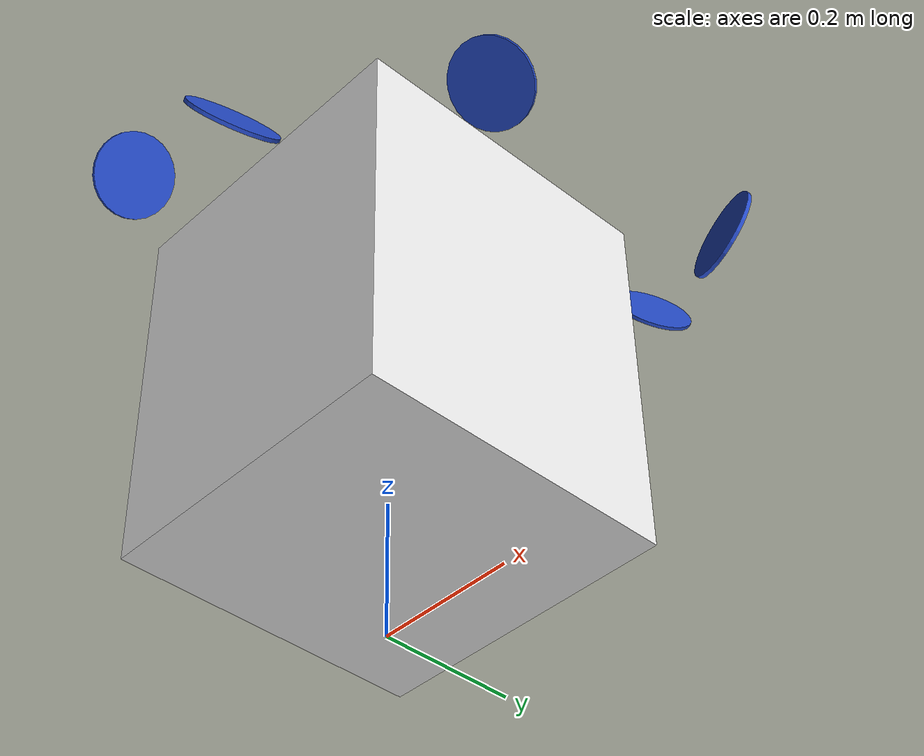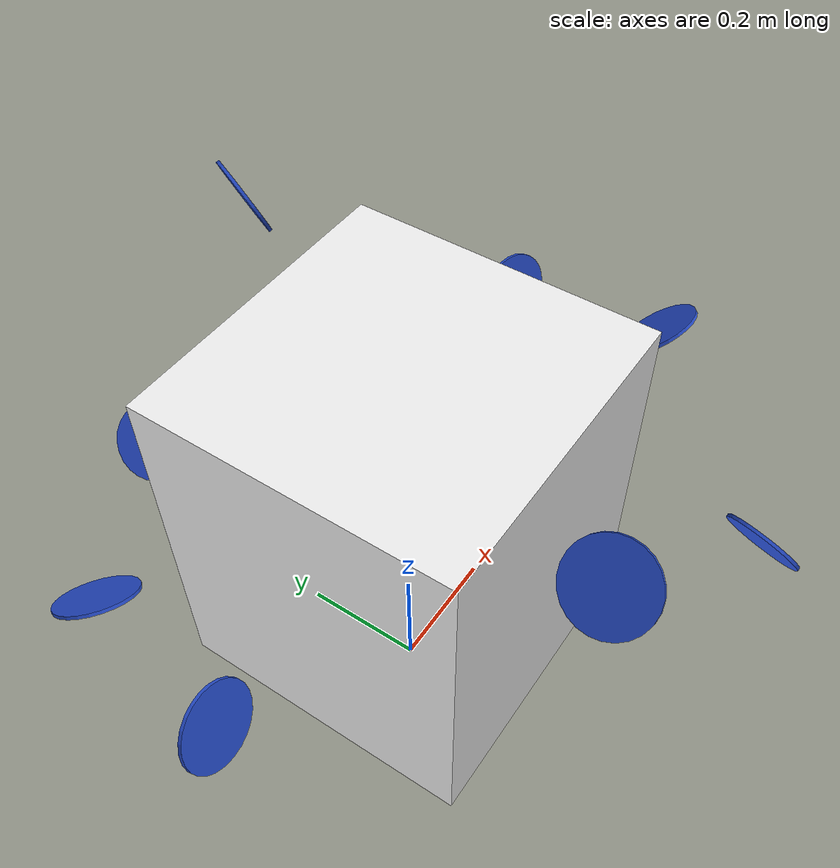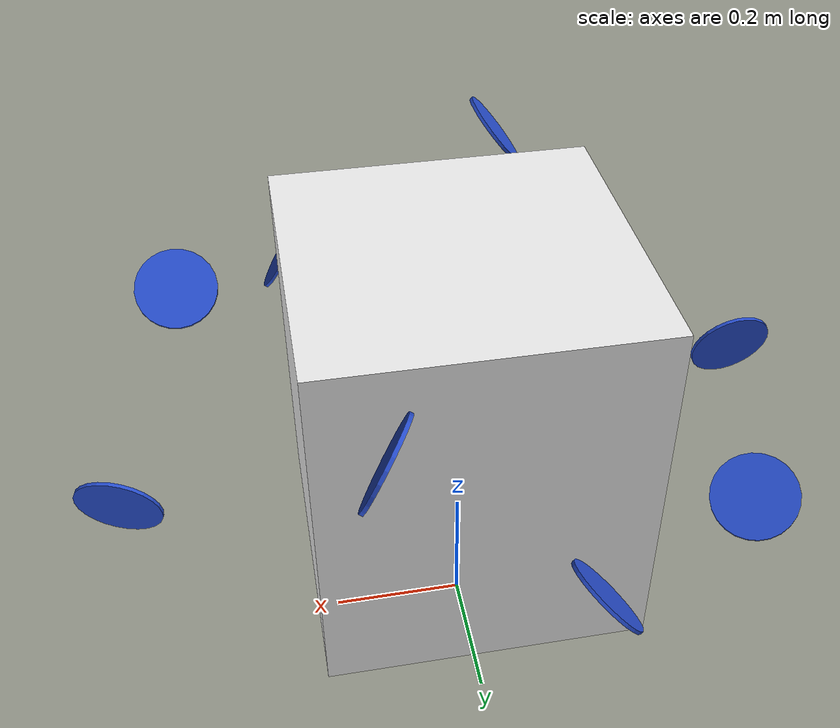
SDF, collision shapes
<?xml version='1.0'?>
<sdf version="1.6">
  <model name="omnicopter">

    <pose>0 0 0.4 0 0 0</pose>
     <link name='base_link'>
      <velocity_decay>
        <linear>0.0</linear>
        <angular>0.0</angular>
      </velocity_decay>
      <inertial>
        <pose>0.009 0.005 0.006 0 0 0</pose>
        <mass>3.3</mass>
        <inertia>
          <ixx>0.13</ixx>
          <ixy>0.01</ixy>
          <ixz>0.01</ixz>
          <iyy>0.12</iyy>
          <iyz>0</iyz>
          <izz>0.2</izz>
        </inertia>
      </inertial>
      <collision name='base_link_collision'>
        <pose>0 0 0 0 0 0</pose>
        <geometry>
          <box>
            <size>0.47 0.47 0.55</size>
          </box>
        </geometry>
        <surface>
          <contact>
            <ode>
              <max_vel>10.0</max_vel>
              <min_depth>0.001</min_depth>
            </ode>
          </contact>
          <friction>
            <ode>
              <mu>1.0</mu>
              <mu2>1.0</mu2>
            </ode>
          </friction>
        </surface>
      </collision>
      <visual name='base_link_visual'>
        <geometry>
          <mesh>
            <uri>meshes/omni.stl</uri>
          </mesh>
        </geometry>
        <material>
          <script>
            <uri>file:///usr/share/gz/gz-sim8/media</uri>
            <name>Gazebo/White</name>
          </script>
        </material>
      </visual>
	</link>
    <link name='imu_link'>
      <inertial>
        <pose>0 0 0 0 0 0</pose>
        <mass>0.02</mass>
        <inertia>
          <ixx>0.00001</ixx>
          <ixy>0</ixy>
          <ixz>0</ixz>
          <iyy>0.00002</iyy>
          <iyz>0</iyz>
          <izz>0.00002</izz>
        </inertia>
      </inertial>
      <sensor name="imu_sensor" type="imu">
        <pose>0 0 0 3.141593 0 0</pose>
        <always_on>1</always_on>
        <update_rate>1000.0</update_rate>
      </sensor>
    </link>
    <joint name='imu_joint' type='revolute'>
      <child>imu_link</child>
      <parent>base_link</parent>
      <axis>
        <xyz>0 0 1</xyz>
        <limit>
          <lower>0</lower>
          <upper>0</upper>
          <effort>0</effort>
          <velocity>0</velocity>
        </limit>
        <dynamics>
          <damping>1.0</damping>
        </dynamics>
        <use_parent_model_frame>1</use_parent_model_frame>
      </axis>
      <physics>
        <ode>
          <implicit_spring_damper>1</implicit_spring_damper>
        </ode>
      </physics>
    </joint>

<!-- FIND ROTORS -->
    <link name='rotor_0'>
      <pose>0.48374761 0.11400547 0.0  -1.85655318 -0.29207681 -0.21929448</pose>
      <inertial>
        <pose>0 0 0 0 -0 0</pose>
        <mass>0.015</mass>
        <inertia>
          <ixx>4.193333e-05</ixx>
          <ixy>0</ixy>
          <ixz>0</ixz>
          <iyy>4.193333e-05</iyy>
          <iyz>0</iyz>
          <izz>8.33e-05</izz>
        </inertia>
      </inertial>
      <collision name='rotor_0_collision'>
        <pose>0 0 0 0 -0 0</pose>
        <geometry>
          <cylinder>
            <length>0.005</length>
            <radius>0.06</radius>
          </cylinder>
        </geometry>
        <surface>
          <contact>
            <ode/>
          </contact>
          <friction>
            <ode/>
          </friction>
        </surface>
      </collision>
      <visual name='rotor_0_visual'>
        <pose>0 0 0 0 -0 0</pose>
        <geometry>
          <mesh>
            <scale>1 1 1</scale>
            <uri>meshes/CW.stl</uri>
          </mesh>
        </geometry>
        <material>
          <script>
            <uri>file:///usr/share/gz/gz-sim8/media</uri>
            <name>Gazebo/Blue</name>
          </script>
        </material>
      </visual>
      <gravity>1</gravity>
      <velocity_decay/>
      <self_collide>0</self_collide>
    </link>
    <joint name='rotor_0_joint' type='revolute'>
      <child>rotor_0</child>
      <parent>base_link</parent>
      <axis>
		<use_parent_model_frame>0</use_parent_model_frame>
        <xyz>0 0 1</xyz>
        <limit>
          <lower>-1e+16</lower>
          <upper>1e+16</upper>
        </limit>
        <dynamics>
          <damping>0.004</damping>
        </dynamics>
        <use_parent_model_frame>1</use_parent_model_frame>
      </axis>
      <physics>
        <ode>
          <implicit_spring_damper>1</implicit_spring_damper>
        </ode>
      </physics>
    </joint>
    <link name='rotor_1'>
      <pose>0.15621022 0.38314461 0.27533175 -0.78284715 -0.98303769 -2.70668811</pose>
      <inertial>
        <pose>0 0 0 0 -0 0</pose>
        <mass>0.015</mass>
        <inertia>
          <ixx>4.193333e-05</ixx>
          <ixy>0</ixy>
          <ixz>0</ixz>
          <iyy>4.193333e-05</iyy>
          <iyz>0</iyz>
          <izz>8.33e-05</izz>
        </inertia>
      </inertial>
      <collision name='rotor_1_collision'>
        <pose>0 0 0 0 -0 0</pose>
        <geometry>
          <cylinder>
            <length>0.005</length>
            <radius>0.06</radius>
          </cylinder>
        </geometry>
        <surface>
          <contact>
            <ode/>
          </contact>
          <friction>
            <ode/>
          </friction>
        </surface>
      </collision>
      <visual name='rotor_1_visual'>
        <pose>0 0 0 0 -0 0</pose>
        <geometry>
          <mesh>
            <scale>1 1 1</scale>
            <uri>meshes/CCW.stl</uri>
          </mesh>
        </geometry>
        <material>
          <script>
            <uri>file:///usr/share/gz/gz-sim8/media</uri>
            <name>Gazebo/Blue</name>
          </script>
        </material>
      </visual>
      <gravity>1</gravity>
      <velocity_decay/>
      <self_collide>0</self_collide>
    </link>
    <joint name='rotor_1_joint' type='revolute'>
      <child>rotor_1</child>
      <parent>base_link</parent>
      <axis>
		<use_parent_model_frame>0</use_parent_model_frame>
        <xyz>0 0 1</xyz>
        <limit>
          <lower>-1e+16</lower>
          <upper>1e+16</upper>
        </limit>
        <dynamics>
          <damping>0.004</damping>
        </dynamics>
        <use_parent_model_frame>1</use_parent_model_frame>
      </axis>
      <physics>
        <ode>
          <implicit_spring_damper>1</implicit_spring_damper>
        </ode>
      </physics>
    </joint>
    <link name='rotor_2'>
      <pose>-0.11032024 0.38136393 0.0 -0.33078502  0.84270089  2.99224844</pose>
      <inertial>
        <pose>0 0 0 0 -0 0</pose>
        <mass>0.015</mass>
        <inertia>
          <ixx>4.193333e-05</ixx>
          <ixy>0</ixy>
          <ixz>0</ixz>
          <iyy>4.193333e-05</iyy>
          <iyz>0</iyz>
          <izz>8.33e-05</izz>
        </inertia>
      </inertial>
      <collision name='rotor_2_collision'>
        <pose>0 0 0 0 -0 0</pose>
        <geometry>
          <cylinder>
            <length>0.005</length>
            <radius>0.06</radius>
          </cylinder>
        </geometry>
        <surface>
          <contact>
            <ode/>
          </contact>
          <friction>
            <ode/>
          </friction>
        </surface>
      </collision>
      <visual name='rotor_2_visual'>
        <pose>0 0 0 0 -0 0</pose>
        <geometry>
          <mesh>
            <scale>1 1 1</scale>
            <uri>meshes/CW.stl</uri>
          </mesh>
        </geometry>
        <material>
          <script>
            <uri>file:///usr/share/gz/gz-sim8/media</uri>
            <name>Gazebo/Blue</name>
          </script>
        </material>
      </visual>
      <gravity>1</gravity>
      <velocity_decay/>
      <self_collide>0</self_collide>
    </link>
    <joint name='rotor_2_joint' type='revolute'>
      <child>rotor_2</child>
      <parent>base_link</parent>
      <axis>
		<use_parent_model_frame>0</use_parent_model_frame>
        <xyz>0 0 1</xyz>
        <limit>
          <lower>-1e+16</lower>
          <upper>1e+16</upper>
        </limit>
        <dynamics>
          <damping>0.004</damping>
        </dynamics>
        <use_parent_model_frame>1</use_parent_model_frame>
      </axis>
      <physics>
        <ode>
          <implicit_spring_damper>1</implicit_spring_damper>
        </ode>
      </physics>
    </joint>
    <link name='rotor_3'>
      <pose>-0.35473328 0.25349615 0.0 2.6424989   0.32982685 -0.08477905</pose>
      <inertial>
        <pose>0 0 0 0 -0 0</pose>
        <mass>0.015</mass>
        <inertia>
          <ixx>4.193333e-05</ixx>
          <ixy>0</ixy>
          <ixz>0</ixz>
          <iyy>4.193333e-05</iyy>
          <iyz>0</iyz>
          <izz>8.33e-05</izz>
        </inertia>
      </inertial>
      <collision name='rotor_3_collision'>
        <pose>0 0 0 0 -0 0</pose>
        <geometry>
          <cylinder>
            <length>0.005</length>
            <radius>0.06</radius>
          </cylinder>
        </geometry>
        <surface>
          <contact>
            <ode/>
          </contact>
          <friction>
            <ode/>
          </friction>
        </surface>
      </collision>
      <visual name='rotor_3_visual'>
        <pose>0 0 0 0 -0 0</pose>
        <geometry>
          <mesh>
            <scale>1 1 1</scale>
            <uri>meshes/CCW.stl</uri>
          </mesh>
        </geometry>
        <material>
          <script>
            <uri>file:///usr/share/gz/gz-sim8/media</uri>
            <name>Gazebo/Blue</name>
          </script>
        </material>
      </visual>
      <gravity>1</gravity>
      <velocity_decay/>
      <self_collide>0</self_collide>
    </link>
    <joint name='rotor_3_joint' type='revolute'>
      <child>rotor_3</child>
      <parent>base_link</parent>
      <axis>
		<use_parent_model_frame>0</use_parent_model_frame>
        <xyz>0 0 1</xyz>
        <limit>
          <lower>-1e+16</lower>
          <upper>1e+16</upper>
        </limit>
        <dynamics>
          <damping>0.004</damping>
        </dynamics>
        <use_parent_model_frame>1</use_parent_model_frame>
      </axis>
      <physics>
        <ode>
          <implicit_spring_damper>1</implicit_spring_damper>
        </ode>
      </physics>
    </joint>
    <link name='rotor_4'>
      <pose>-0.41864087 -0.02021862 0.03964886 -1.84179685  0.07206257  0.05478069</pose>
      <inertial>
        <pose>0 0 0 0 -0 0</pose>
        <mass>0.015</mass>
        <inertia>
          <ixx>4.193333e-05</ixx>
          <ixy>0</ixy>
          <ixz>0</ixz>
          <iyy>4.193333e-05</iyy>
          <iyz>0</iyz>
          <izz>8.33e-05</izz>
        </inertia>
      </inertial>
      <collision name='rotor_4_collision'>
        <pose>0 0 0 0 -0 0</pose>
        <geometry>
          <cylinder>
            <length>0.005</length>
            <radius>0.06</radius>
          </cylinder>
        </geometry>
        <surface>
          <contact>
            <ode/>
          </contact>
          <friction>
            <ode/>
          </friction>
        </surface>
      </collision>
      <visual name='rotor_4_visual'>
        <pose>0 0 0 0 -0 0</pose>
        <geometry>
          <mesh>
            <scale>1 1 1</scale>
            <uri>meshes/CW.stl</uri>
          </mesh>
        </geometry>
        <material>
          <script>
            <uri>file:///usr/share/gz/gz-sim8/media</uri>
            <name>Gazebo/Blue</name>
          </script>
        </material>
      </visual>
      <gravity>1</gravity>
      <velocity_decay/>
      <self_collide>0</self_collide>
    </link>
    <joint name='rotor_4_joint' type='revolute'>
      <child>rotor_4</child>
      <parent>base_link</parent>
      <axis>
		<use_parent_model_frame>0</use_parent_model_frame>
        <xyz>0 0 1</xyz>
        <limit>
          <lower>-1e+16</lower>
          <upper>1e+16</upper>
        </limit>
        <dynamics>
          <damping>0.004</damping>
        </dynamics>
        <use_parent_model_frame>1</use_parent_model_frame>
      </axis>
      <physics>
        <ode>
          <implicit_spring_damper>1</implicit_spring_damper>
        </ode>
      </physics>
    </joint>
    <link name='rotor_5'>
      <pose>-0.12587546 -0.35639015 0.25151029 0.0098681   0.91727205 -3.13672024</pose>
      <inertial>
        <pose>0 0 0 0 -0 0</pose>
        <mass>0.015</mass>
        <inertia>
          <ixx>4.193333e-05</ixx>
          <ixy>0</ixy>
          <ixz>0</ixz>
          <iyy>4.193333e-05</iyy>
          <iyz>0</iyz>
          <izz>8.33e-05</izz>
        </inertia>
      </inertial>
      <collision name='rotor_5_collision'>
        <pose>0 0 0 0 -0 0</pose>
        <geometry>
          <cylinder>
            <length>0.005</length>
            <radius>0.06</radius>
          </cylinder>
        </geometry>
        <surface>
          <contact>
            <ode/>
          </contact>
          <friction>
            <ode/>
          </friction>
        </surface>
      </collision>
      <visual name='rotor_5_visual'>
        <pose>0 0 0 0 -0 0</pose>
        <geometry>
          <mesh>
            <scale>1 1 1</scale>
            <uri>meshes/CCW.stl</uri>
          </mesh>
        </geometry>
        <material>
          <script>
            <uri>file:///usr/share/gz/gz-sim8/media</uri>
            <name>Gazebo/Blue</name>
          </script>
        </material>
      </visual>
      <gravity>1</gravity>
      <velocity_decay/>
      <self_collide>0</self_collide>
    </link>
    <joint name='rotor_5_joint' type='revolute'>
      <child>rotor_5</child>
      <parent>base_link</parent>
      <axis>
		<use_parent_model_frame>0</use_parent_model_frame>
        <xyz>0 0 1</xyz>
        <limit>
          <lower>-1e+16</lower>
          <upper>1e+16</upper>
        </limit>
        <dynamics>
          <damping>0.004</damping>
        </dynamics>
        <use_parent_model_frame>1</use_parent_model_frame>
      </axis>
      <physics>
        <ode>
          <implicit_spring_damper>1</implicit_spring_damper>
        </ode>
      </physics>
    </joint>
    <link name='rotor_6'>
      <pose>0.22276892 -0.44427808 0.0 -0.37451244 -0.97919922 -2.94034096</pose>
      <inertial>
        <pose>0 0 0 0 -0 0</pose>
        <mass>0.015</mass>
        <inertia>
          <ixx>4.193333e-05</ixx>
          <ixy>0</ixy>
          <ixz>0</ixz>
          <iyy>4.193333e-05</iyy>
          <iyz>0</iyz>
          <izz>8.33e-05</izz>
        </inertia>
      </inertial>
      <collision name='rotor_6_collision'>
        <pose>0 0 0 0 -0 0</pose>
        <geometry>
          <cylinder>
            <length>0.005</length>
            <radius>0.06</radius>
          </cylinder>
        </geometry>
        <surface>
          <contact>
            <ode/>
          </contact>
          <friction>
            <ode/>
          </friction>
        </surface>
      </collision>
      <visual name='rotor_6_visual'>
        <pose>0 0 0 0 -0 0</pose>
        <geometry>
          <mesh>
            <scale>1 1 1</scale>
            <uri>meshes/CW.stl</uri>
          </mesh>
        </geometry>
        <material>
          <script>
            <uri>file:///usr/share/gz/gz-sim8/media</uri>
            <name>Gazebo/Blue</name>
          </script>
        </material>
      </visual>
      <gravity>1</gravity>
      <velocity_decay/>
      <self_collide>0</self_collide>
    </link>
    <joint name='rotor_6_joint' type='revolute'>
      <child>rotor_6</child>
      <parent>base_link</parent>
      <axis>
		<use_parent_model_frame>0</use_parent_model_frame>
        <xyz>0 0 1</xyz>
        <limit>
          <lower>-1e+16</lower>
          <upper>1e+16</upper>
        </limit>
        <dynamics>
          <damping>0.004</damping>
        </dynamics>
        <use_parent_model_frame>1</use_parent_model_frame>
      </axis>
      <physics>
        <ode>
          <implicit_spring_damper>1</implicit_spring_damper>
        </ode>
      </physics>
    </joint>
    <link name='rotor_7'>
      <pose>0.38490258 -0.17992486 0.13562099 2.4710711   0.01400798 -0.00488064</pose>
      <inertial>
        <pose>0 0 0 0 -0 0</pose>
        <mass>0.015</mass>
        <inertia>
          <ixx>4.193333e-05</ixx>
          <ixy>0</ixy>
          <ixz>0</ixz>
          <iyy>4.193333e-05</iyy>
          <iyz>0</iyz>
          <izz>8.33e-05</izz>
        </inertia>
      </inertial>
      <collision name='rotor_7_collision'>
        <pose>0 0 0 0 -0 0</pose>
        <geometry>
          <cylinder>
            <length>0.005</length>
            <radius>0.06</radius>
          </cylinder>
        </geometry>
        <surface>
          <contact>
            <ode/>
          </contact>
          <friction>
            <ode/>
          </friction>
        </surface>
      </collision>
      <visual name='rotor_7_visual'>
        <pose>0 0 0 0 -0 0</pose>
        <geometry>
          <mesh>
            <scale>1 1 1</scale>
            <uri>meshes/CCW.stl</uri>
          </mesh>
        </geometry>
        <material>
          <script>
            <uri>file:///usr/share/gz/gz-sim8/media</uri>
            <name>Gazebo/Blue</name>
          </script>
        </material>
      </visual>
      <gravity>1</gravity>
      <velocity_decay/>
      <self_collide>0</self_collide>
    </link>
    <joint name='rotor_7_joint' type='revolute'>
      <child>rotor_7</child>
      <parent>base_link</parent>
      <axis>
		<use_parent_model_frame>0</use_parent_model_frame>
        <xyz>0 0 1</xyz>
        <limit>
          <lower>-1e+16</lower>
          <upper>1e+16</upper>
        </limit>
        <dynamics>
          <damping>0.004</damping>
        </dynamics>
        <use_parent_model_frame>1</use_parent_model_frame>
      </axis>
      <physics>
        <ode>
          <implicit_spring_damper>1</implicit_spring_damper>
        </ode>
      </physics>
    </joint>

<!-- FIND PLUGINS -->

	<plugin name="OdometrySensor" filename="OdometrySensor">
		<nameSpace>omnicopter</nameSpace>
    <provide_linear_velocity>true</provide_linear_velocity>
    <provide_angular_velocity>true</provide_angular_velocity>
	</plugin>

  <plugin name="BetaMotorPlugin" filename="BetaMotorPlugin">
  	<nameSpace>omnicopter</nameSpace>
  	<prop_num>8</prop_num>
  	<slowdown_sim>40</slowdown_sim>
  	<throttle>30000</throttle>
  	<thrust_const>4.4086e-06</thrust_const>
  	<drag_const>0.001</drag_const>
  	<turning_directions>0 1 0 1 0 1 0 1</turning_directions>
  </plugin>

	</model>
  <physics name="default_physics" type="ode">
    <max_step_size>0.001</max_step_size>
    <real_time_update_rate>1000</real_time_update_rate>
    <enable_velocity_checks>true</enable_velocity_checks>
  </physics>
</sdf>
